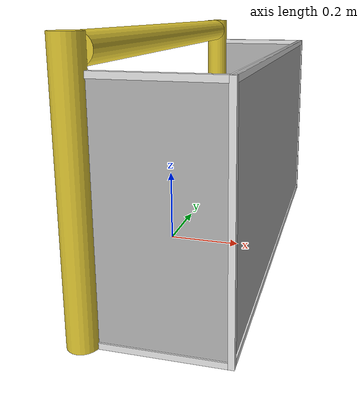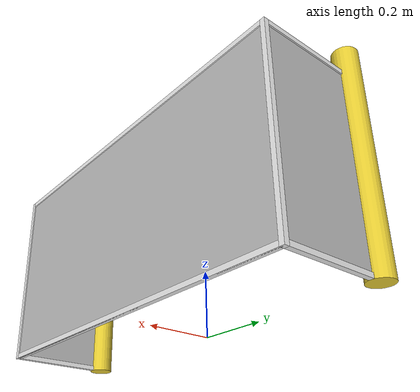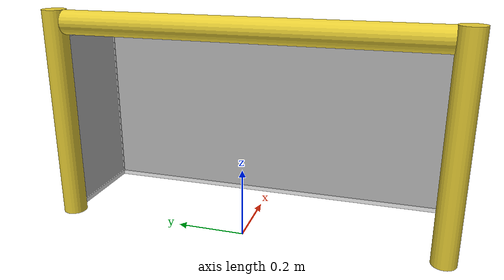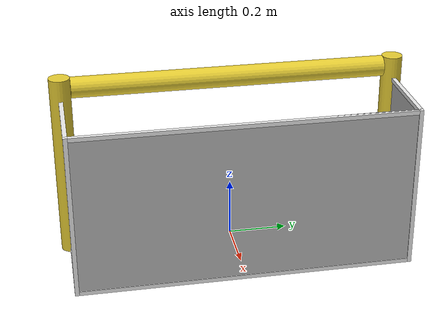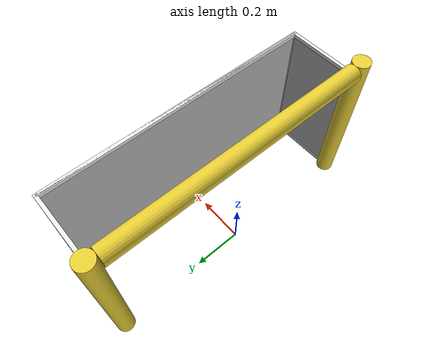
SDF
<?xml version="1.0" ?>
<!-- |    This document was autogenerated by xacro from goal.xacro                     | -->
<!-- |    EDITING THIS FILE BY HAND IS NOT RECOMMENDED                                 | -->
<sdf version="1.5">
  <model name="RoboCup 2014 SPL Goal">
    <static>true</static>
    <!-- Left post -->
    <link name="left_post">
      <pose>0.0 0.5599999999999999 0.315 0 0 0</pose>
      <collision name="collision">
        <geometry>
          <cylinder>
            <radius>0.034999999999999996</radius>
            <length>0.63</length>
          </cylinder>
        </geometry>
      </collision>
      <visual name="visual">
        <geometry>
          <cylinder>
            <radius>0.034999999999999996</radius>
            <length>0.63</length>
          </cylinder>
        </geometry>
        <material>
          <script>
            <uri>file://media/materials/scripts/gazebo.material</uri>
            <name>Gazebo/ZincYellow</name>
          </script>
        </material>
      </visual>
    </link>
    <!-- Left support horizontal lower -->
    <link name="left_support_horiz_lower">
      <pose>0.16799999999999998 0.5599999999999999 0.006999999999999999 0 0 0</pose>
      <collision name="collision">
        <geometry>
          <box>
            <size>0.26599999999999996 0.013999999999999999 0.013999999999999999</size>
          </box>
        </geometry>
      </collision>
      <visual name="visual">
        <geometry>
          <box>
            <size>0.26599999999999996 0.013999999999999999 0.013999999999999999</size>
          </box>
        </geometry>
        <material>
          <script>
            <uri>file://media/materials/scripts/gazebo.material</uri>
            <name>Gazebo/White</name>
          </script>
        </material>
      </visual>
    </link>
    <!-- Left support horizontal upper -->
    <link name="left_support_horiz_upper">
      <pose>0.16799999999999998 0.5599999999999999 0.5529999999999999 0 0 0</pose>
      <collision name="collision">
        <geometry>
          <box>
            <size>0.26599999999999996 0.013999999999999999 0.013999999999999999</size>
          </box>
        </geometry>
      </collision>
      <visual name="visual">
        <geometry>
          <box>
            <size>0.26599999999999996 0.013999999999999999 0.013999999999999999</size>
          </box>
        </geometry>
        <material>
          <script>
            <uri>file://media/materials/scripts/gazebo.material</uri>
            <name>Gazebo/White</name>
          </script>
        </material>
      </visual>
    </link>
    <!-- Left support vertical -->
    <link name="left_support_vertical">
      <pose>0.308 0.5599999999999999 0.27999999999999997 0 1.5708 0</pose>
      <collision name="collision">
        <geometry>
          <box>
            <size>0.5599999999999999 0.013999999999999999 0.013999999999999999</size>
          </box>
        </geometry>
      </collision>
      <visual name="visual">
        <geometry>
          <box>
            <size>0.5599999999999999 0.013999999999999999 0.013999999999999999</size>
          </box>
        </geometry>
        <material>
          <script>
            <uri>file://media/materials/scripts/gazebo.material</uri>
            <name>Gazebo/White</name>
          </script>
        </material>
      </visual>
    </link>
    <!-- Right support horizontal lower -->
    <link name="right_support_horiz_lower">
      <pose>0.16799999999999998 -0.5599999999999999 0.006999999999999999 0 0 0</pose>
      <collision name="collision">
        <geometry>
          <box>
            <size>0.26599999999999996 0.013999999999999999 0.013999999999999999</size>
          </box>
        </geometry>
      </collision>
      <visual name="visual">
        <geometry>
          <box>
            <size>0.26599999999999996 0.013999999999999999 0.013999999999999999</size>
          </box>
        </geometry>
        <material>
          <script>
            <uri>file://media/materials/scripts/gazebo.material</uri>
            <name>Gazebo/White</name>
          </script>
        </material>
      </visual>
    </link>
    <!-- Right support horizontal upper -->
    <link name="right_support_horiz_upper">
      <pose>0.16799999999999998 -0.5599999999999999 0.5529999999999999 0 0 0</pose>
      <collision name="collision">
        <geometry>
          <box>
            <size>0.26599999999999996 0.013999999999999999 0.013999999999999999</size>
          </box>
        </geometry>
      </collision>
      <visual name="visual">
        <geometry>
          <box>
            <size>0.26599999999999996 0.013999999999999999 0.013999999999999999</size>
          </box>
        </geometry>
        <material>
          <script>
            <uri>file://media/materials/scripts/gazebo.material</uri>
            <name>Gazebo/White</name>
          </script>
        </material>
      </visual>
    </link>
    <!-- Right support vertical -->
    <link name="right_support_vertical">
      <pose>0.308 -0.5599999999999999 0.27999999999999997 0 1.5708 0</pose>
      <collision name="collision">
        <geometry>
          <box>
            <size>0.5599999999999999 0.013999999999999999 0.013999999999999999</size>
          </box>
        </geometry>
      </collision>
      <visual name="visual">
        <geometry>
          <box>
            <size>0.5599999999999999 0.013999999999999999 0.013999999999999999</size>
          </box>
        </geometry>
        <material>
          <script>
            <uri>file://media/materials/scripts/gazebo.material</uri>
            <name>Gazebo/White</name>
          </script>
        </material>
      </visual>
    </link>
    <!-- Center support horizontal lower -->
    <link name="center_support_horiz_lower">
      <pose>0.308 0.0 0.006999999999999999 0 1.5708 0</pose>
      <collision name="collision">
        <geometry>
          <box>
            <size>0.013999999999999999 1.1059999999999999 0.013999999999999999</size>
          </box>
        </geometry>
      </collision>
      <visual name="visual">
        <geometry>
          <box>
            <size>0.013999999999999999 1.1059999999999999 0.013999999999999999</size>
          </box>
        </geometry>
        <material>
          <script>
            <uri>file://media/materials/scripts/gazebo.material</uri>
            <name>Gazebo/White</name>
          </script>
        </material>
      </visual>
    </link>
    <!-- Center support horizontal upper -->
    <link name="center_support_horiz_upper">
      <pose>0.308 0.0 0.5529999999999999 0 1.5708 0</pose>
      <collision name="collision">
        <geometry>
          <box>
            <size>0.013999999999999999 1.1059999999999999 0.013999999999999999</size>
          </box>
        </geometry>
      </collision>
      <visual name="visual">
        <geometry>
          <box>
            <size>0.013999999999999999 1.1059999999999999 0.013999999999999999</size>
          </box>
        </geometry>
        <material>
          <script>
            <uri>file://media/materials/scripts/gazebo.material</uri>
            <name>Gazebo/White</name>
          </script>
        </material>
      </visual>
    </link>
    <!-- Right post -->
    <link name="right_post">
      <pose>0.0 -0.5599999999999999 0.315 0 0 0</pose>
      <collision name="collision">
        <geometry>
          <cylinder>
            <radius>0.034999999999999996</radius>
            <length>0.63</length>
          </cylinder>
        </geometry>
      </collision>
      <visual name="visual">
        <geometry>
          <cylinder>
            <radius>0.034999999999999996</radius>
            <length>0.63</length>
          </cylinder>
        </geometry>
        <material>
          <script>
            <uri>file://media/materials/scripts/gazebo.material</uri>
            <name>Gazebo/ZincYellow</name>
          </script>
        </material>
      </visual>
    </link>
    <!-- Crossbar -->
    <link name="crossbar">
      <pose>0.0 0.0 0.595 1.57 1.57 0</pose>
      <collision name="collision">
        <geometry>
          <cylinder>
            <radius>0.034999999999999996</radius>
            <length>1.0499999999999998</length>
          </cylinder>
        </geometry>
      </collision>
      <visual name="visual">
        <geometry>
          <cylinder>
            <radius>0.034999999999999996</radius>
            <length>1.0499999999999998</length>
          </cylinder>
        </geometry>
        <material>
          <script>
            <uri>file://media/materials/scripts/gazebo.material</uri>
            <name>Gazebo/ZincYellow</name>
          </script>
        </material>
      </visual>
    </link>
    <!-- Center net -->
    <link name="center_net">
      <pose>0.308 0.0 0.27999999999999997 0 0 0</pose>
      <collision name="collision">
        <geometry>
          <box>
            <size>0.006999999999999999 1.1199999999999999 0.5599999999999999</size>
          </box>
        </geometry>
      </collision>
      <visual name="visual">
        <geometry>
          <box>
            <size>0.006999999999999999 1.1199999999999999 0.5599999999999999</size>
          </box>
        </geometry>
        <material>
          <script>
            <uri>model://robocup09_spl_field/materials/scripts/</uri>
            <uri>model://robocup09_spl_field/materials/textures/</uri>
            <name>RoboCup/Net</name>
          </script>
        </material>
      </visual>
    </link>
    <!-- Left net -->
    <link name="left_net">
      <pose>0.16799999999999998 0.5599999999999999 0.27999999999999997 0 0 0</pose>
      <collision name="collision">
        <geometry>
          <box>
            <size>0.26599999999999996 0.006999999999999999 0.5319999999999999</size>
          </box>
        </geometry>
      </collision>
      <visual name="visual">
        <geometry>
          <box>
            <size>0.26599999999999996 0.006999999999999999 0.5319999999999999</size>
          </box>
        </geometry>
        <material>
          <script>
            <uri>model://robocup09_spl_field/materials/scripts/</uri>
            <uri>model://robocup09_spl_field/materials/textures/</uri>
            <name>RoboCup/Net</name>
          </script>
        </material>
      </visual>
    </link>
    <!-- Right net -->
    <link name="right_net">
      <pose>0.16799999999999998 -0.5599999999999999 0.27999999999999997 0 0 0</pose>
      <collision name="collision">
        <geometry>
          <box>
            <size>0.26599999999999996 0.006999999999999999 0.5319999999999999</size>
          </box>
        </geometry>
      </collision>
      <visual name="visual">
        <geometry>
          <box>
            <size>0.26599999999999996 0.006999999999999999 0.5319999999999999</size>
          </box>
        </geometry>
        <material>
          <script>
            <uri>model://robocup09_spl_field/materials/scripts/</uri>
            <uri>model://robocup09_spl_field/materials/textures/</uri>
            <name>RoboCup/Net</name>
          </script>
        </material>
      </visual>
    </link>
  </model>
</sdf>
